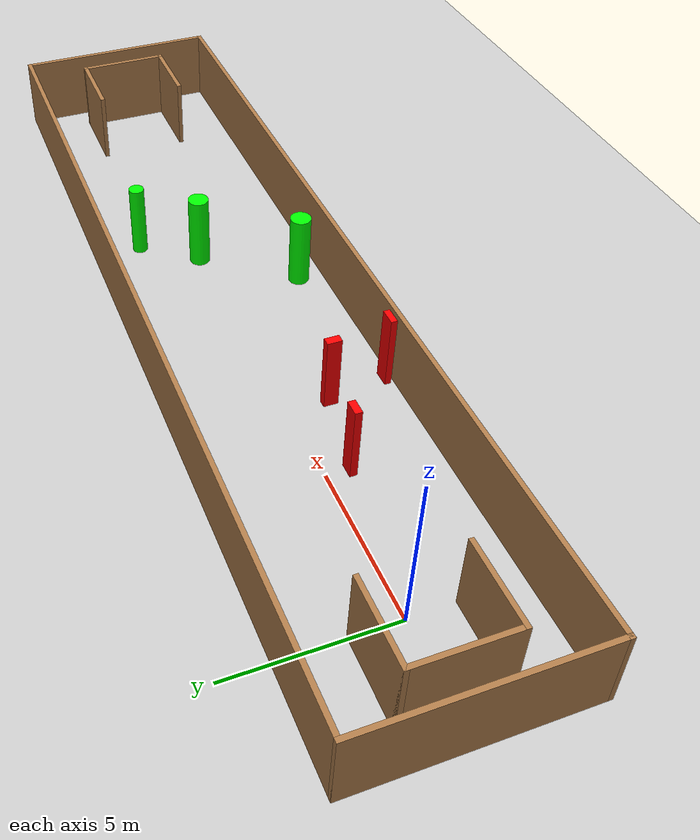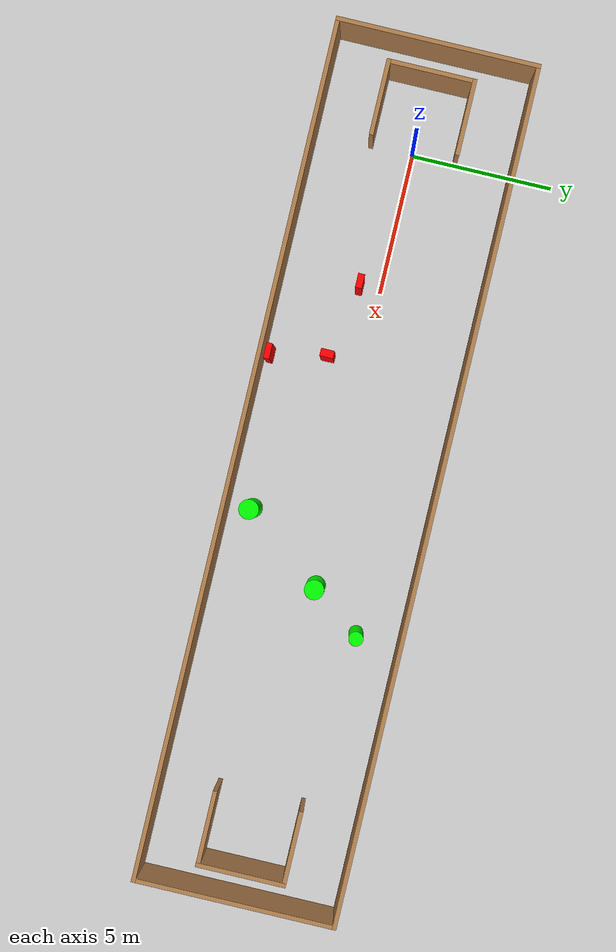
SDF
<sdf version="1.7">
 <world name="default">
  <light name="sun" type="directional">
   <pose>0 0 10 0 -0 0</pose>
   <diffuse>0.8 0.8 0.8 1</diffuse>
   <specular>0.2 0.2 0.2 1</specular>
   <attenuation>
    <range>1000</range>
    <constant>0.9</constant>
    <linear>0.01</linear>
    <quadratic>0.001</quadratic>
   </attenuation>
   <direction>-0.5 0.1 -0.9</direction>
   <spot><inner_angle>0</inner_angle><outer_angle>0</outer_angle><falloff>0</falloff></spot>
  </light>
  <model name="ground_plane">
   <static>1</static>
   <link name="link">
    <collision name="collision">
     <geometry><plane><normal>0 0 1</normal><size>100 100</size></plane></geometry>
     <surface>
      <contact><collide_bitmask>65535</collide_bitmask></contact>
      <friction><ode><mu>100</mu><mu2>50</mu2></ode></friction>
     </surface>
    </collision>
    <visual name="visual">
     <cast_shadows>0</cast_shadows>
     <geometry><plane><normal>0 0 1</normal><size>100 100</size></plane></geometry>
     <material>
      <script><uri>file://media/materials/scripts/gazebo.material</uri><name>Gazebo/Grey</name></script>
     </material>
    </visual>
   </link>
  </model>
  <gravity>0 0 -9.8</gravity>
  <magnetic_field>6e-06 2.3e-05 -4.2e-05</magnetic_field>
  <atmosphere type="adiabatic"/>
  <physics type="ode">
   <max_step_size>0.001</max_step_size>
   <real_time_factor>1</real_time_factor>
   <real_time_update_rate>1000</real_time_update_rate>
  </physics>
  <scene><ambient>0.4 0.4 0.4 1</ambient><background>0.7 0.7 0.7 1</background><shadows>1</shadows></scene>
  <spherical_coordinates>
   <surface_model>EARTH_WGS84</surface_model>
   <latitude_deg>0</latitude_deg>
   <longitude_deg>0</longitude_deg>
   <elevation>0</elevation>
   <heading_deg>0</heading_deg>
  </spherical_coordinates>
  <model name="my_base_walls">
   <link name="Wall_0">
    <collision name="Wall_0_Collision">
     <geometry><box><size>7.15 0.15 2.5</size></box></geometry>
     <pose>0 0 1.25 0 -0 0</pose>
    </collision>
    <visual name="Wall_0_Visual">
     <pose>0 0 1.25 0 -0 0</pose>
     <geometry><box><size>7.15 0.15 2.5</size></box></geometry>
     <material>
      <script><uri>file://media/materials/scripts/gazebo.material</uri><name>Gazebo/Wood</name></script>
      <ambient>1 1 1 1</ambient>
     </material>
     <meta><layer>0</layer></meta>
    </visual>
    <pose>-15 0 0 0 -0 1.5708</pose>
   </link>
   <link name="Wall_10">
    <collision name="Wall_10_Collision">
     <geometry><box><size>2.65 0.15 2.5</size></box></geometry>
     <pose>0 0 1.25 0 -0 0</pose>
    </collision>
    <visual name="Wall_10_Visual">
     <pose>0 0 1.25 0 -0 0</pose>
     <geometry><box><size>2.65 0.15 2.5</size></box></geometry>
     <material>
      <script><uri>file://media/materials/scripts/gazebo.material</uri><name>Gazebo/Wood</name></script>
      <ambient>1 1 1 1</ambient>
     </material>
     <meta><layer>0</layer></meta>
    </visual>
    <pose>-12.75 -1.5 0 0 -0 0</pose>
   </link>
   <link name="Wall_12">
    <collision name="Wall_12_Collision">
     <geometry><box><size>2.65 0.15 2.5</size></box></geometry>
     <pose>0 0 1.25 0 -0 0</pose>
    </collision>
    <visual name="Wall_12_Visual">
     <pose>0 0 1.25 0 -0 0</pose>
     <geometry><box><size>2.65 0.15 2.5</size></box></geometry>
     <material>
      <script><uri>file://media/materials/scripts/gazebo.material</uri><name>Gazebo/Wood</name></script>
      <ambient>1 1 1 1</ambient>
     </material>
     <meta><layer>0</layer></meta>
    </visual>
    <pose>-12.75 1.5 0 0 -0 0</pose>
   </link>
   <link name="Wall_14">
    <collision name="Wall_14_Collision">
     <geometry><box><size>3.15 0.15 2.5</size></box></geometry>
     <pose>0 0 1.25 0 -0 0</pose>
    </collision>
    <visual name="Wall_14_Visual">
     <pose>0 0 1.25 0 -0 0</pose>
     <geometry><box><size>3.15 0.15 2.5</size></box></geometry>
     <material>
      <script><uri>file://media/materials/scripts/gazebo.material</uri><name>Gazebo/Wood</name></script>
      <ambient>1 1 1 1</ambient>
     </material>
     <meta><layer>0</layer></meta>
    </visual>
    <pose>14 0 0 0 -0 -1.5708</pose>
   </link>
   <link name="Wall_15">
    <collision name="Wall_15_Collision">
     <geometry><box><size>2.65 0.15 2.5</size></box></geometry>
     <pose>0 0 1.25 0 -0 0</pose>
    </collision>
    <visual name="Wall_15_Visual">
     <pose>0 0 1.25 0 -0 0</pose>
     <geometry><box><size>2.65 0.15 2.5</size></box></geometry>
     <material>
      <script><uri>file://media/materials/scripts/gazebo.material</uri><name>Gazebo/Wood</name></script>
      <ambient>1 1 1 1</ambient>
     </material>
     <meta><layer>0</layer></meta>
    </visual>
    <pose>12.75 -1.5 0 0 -0 3.14159</pose>
   </link>
   <link name="Wall_17">
    <collision name="Wall_17_Collision">
     <geometry><box><size>2.65 0.15 2.5</size></box></geometry>
     <pose>0 0 1.25 0 -0 0</pose>
    </collision>
    <visual name="Wall_17_Visual">
     <pose>0 0 1.25 0 -0 0</pose>
     <geometry><box><size>2.65 0.15 2.5</size></box></geometry>
     <material>
      <script><uri>file://media/materials/scripts/gazebo.material</uri><name>Gazebo/Wood</name></script>
      <ambient>1 1 1 1</ambient>
     </material>
     <meta><layer>0</layer></meta>
    </visual>
    <pose>12.75 1.5 0 0 -0 3.14159</pose>
   </link>
   <link name="Wall_2">
    <collision name="Wall_2_Collision">
     <geometry><box><size>30.15 0.15 2.5</size></box></geometry>
     <pose>0 0 1.25 0 -0 0</pose>
    </collision>
    <visual name="Wall_2_Visual">
     <pose>0 0 1.25 0 -0 0</pose>
     <geometry><box><size>30.15 0.15 2.5</size></box></geometry>
     <material>
      <script><uri>file://media/materials/scripts/gazebo.material</uri><name>Gazebo/Wood</name></script>
      <ambient>1 1 1 1</ambient>
     </material>
     <meta><layer>0</layer></meta>
    </visual>
    <pose>-0 -3.5 0 0 -0 0</pose>
   </link>
   <link name="Wall_4">
    <collision name="Wall_4_Collision">
     <geometry><box><size>30.15 0.15 2.5</size></box></geometry>
     <pose>0 0 1.25 0 -0 0</pose>
    </collision>
    <visual name="Wall_4_Visual">
     <pose>0 0 1.25 0 -0 0</pose>
     <geometry><box><size>30.15 0.15 2.5</size></box></geometry>
     <material>
      <script><uri>file://media/materials/scripts/gazebo.material</uri><name>Gazebo/Wood</name></script>
      <ambient>1 1 1 1</ambient>
     </material>
     <meta><layer>0</layer></meta>
    </visual>
    <pose>-0 3.5 0 0 -0 0</pose>
   </link>
   <link name="Wall_6">
    <collision name="Wall_6_Collision">
     <geometry><box><size>7.15 0.15 2.5</size></box></geometry>
     <pose>0 0 1.25 0 -0 0</pose>
    </collision>
    <visual name="Wall_6_Visual">
     <pose>0 0 1.25 0 -0 0</pose>
     <geometry><box><size>7.15 0.15 2.5</size></box></geometry>
     <material>
      <script><uri>file://media/materials/scripts/gazebo.material</uri><name>Gazebo/Wood</name></script>
      <ambient>1 1 1 1</ambient>
     </material>
     <meta><layer>0</layer></meta>
    </visual>
    <pose>15 0 0 0 -0 -1.5708</pose>
   </link>
   <link name="Wall_9">
    <collision name="Wall_9_Collision">
     <geometry><box><size>3.15 0.15 2.5</size></box></geometry>
     <pose>0 0 1.25 0 -0 0</pose>
    </collision>
    <visual name="Wall_9_Visual">
     <pose>0 0 1.25 0 -0 0</pose>
     <geometry><box><size>3.15 0.15 2.5</size></box></geometry>
     <material>
      <script><uri>file://media/materials/scripts/gazebo.material</uri><name>Gazebo/Wood</name></script>
      <ambient>1 1 1 1</ambient>
     </material>
     <meta><layer>0</layer></meta>
    </visual>
    <pose>-14 0 0 0 -0 -1.5708</pose>
   </link>
   <static>1</static>
   <pose>11.5 0 0 0 -0 0</pose>
  </model>
  <model name="cylinder1">
   <static>1</static>
   <link name="link">
    <inertial>
     <mass>1</mass>
     <inertia><ixx>0.5</ixx><ixy>0</ixy><ixz>0</ixz><iyy>0.5</iyy><iyz>0</iyz><izz>1</izz></inertia>
    </inertial>
    <collision name="collision">
     <geometry><cylinder><radius>0.3457130239332029</radius><length>2.5</length></cylinder></geometry>
    </collision>
    <visual name="visual">
     <geometry><cylinder><radius>0.3457130239332029</radius><length>2.5</length></cylinder></geometry>
     <material>
      <ambient>0 1 0 1</ambient>
      <diffuse>0 1 0 1</diffuse>
      <specular>0.1 0.1 0.1 1</specular>
      <emissive>0 0 0 0</emissive>
     </material>
    </visual>
   </link>
   <pose>13.382053495578045 -2.6019863340935006 1.25 0 0 0</pose>
  </model>
  <model name="cylinder2">
   <static>1</static>
   <link name="link">
    <inertial>
     <mass>1</mass>
     <inertia><ixx>0.5</ixx><ixy>0</ixy><ixz>0</ixz><iyy>0.5</iyy><iyz>0</iyz><izz>1</izz></inertia>
    </inertial>
    <collision name="collision">
     <geometry><cylinder><radius>0.34324678089397187</radius><length>2.5</length></cylinder></geometry>
    </collision>
    <visual name="visual">
     <geometry><cylinder><radius>0.34324678089397187</radius><length>2.5</length></cylinder></geometry>
     <material>
      <ambient>0 1 0 1</ambient>
      <diffuse>0 1 0 1</diffuse>
      <specular>0.1 0.1 0.1 1</specular>
      <emissive>0 0 0 0</emissive>
     </material>
    </visual>
   </link>
   <pose>15.522606685126801 0.18781232653146995 1.25 0 0 0</pose>
  </model>
  <model name="cylinder3">
   <static>1</static>
   <link name="link">
    <inertial>
     <mass>1</mass>
     <inertia><ixx>0.5</ixx><ixy>0</ixy><ixz>0</ixz><iyy>0.5</iyy><iyz>0</iyz><izz>1</izz></inertia>
    </inertial>
    <collision name="collision">
     <geometry><cylinder><radius>0.25306731945454675</radius><length>2.5</length></cylinder></geometry>
    </collision>
    <visual name="visual">
     <geometry><cylinder><radius>0.25306731945454675</radius><length>2.5</length></cylinder></geometry>
     <material>
      <ambient>0 1 0 1</ambient>
      <diffuse>0 1 0 1</diffuse>
      <specular>0.1 0.1 0.1 1</specular>
      <emissive>0 0 0 0</emissive>
     </material>
    </visual>
   </link>
   <pose>16.812194046626857 1.9472141662782976 1.25 0 0 0</pose>
  </model>
  <model name="box1">
   <static>1</static>
   <link name="link">
    <inertial>
     <mass>1</mass>
     <inertia><ixx>0.083</ixx><ixy>0</ixy><ixz>0</ixz><iyy>0.083</iyy><iyz>0</iyz><izz>0.083</izz></inertia>
    </inertial>
    <collision name="collision">
     <geometry><box><size>0.5425044364934488 0.20589523216800268 2.5</size></box></geometry>
    </collision>
    <visual name="visual">
     <geometry><box><size>0.5425044364934488 0.20589523216800268 2.5</size></box></geometry>
     <material>
      <ambient>1 0 0 1</ambient>
      <diffuse>1 0 0 1</diffuse>
      <specular>0.1 0.1 0.1 1</specular>
      <emissive>0 0 0 0</emissive>
     </material>
    </visual>
    <sensor name="my_contact" type="contact">
     <contact><collision>box_collision</collision><topic>__default_topic__</topic></contact>
    </sensor>
   </link>
   <pose>7.999116700197035 -3.212218515050068 1.25 0 0 0</pose>
  </model>
  <model name="box2">
   <static>1</static>
   <link name="link">
    <inertial>
     <mass>1</mass>
     <inertia><ixx>0.083</ixx><ixy>0</ixy><ixz>0</ixz><iyy>0.083</iyy><iyz>0</iyz><izz>0.083</izz></inertia>
    </inertial>
    <collision name="collision">
     <geometry><box><size>0.26290988407732047 0.46750984024514763 2.5</size></box></geometry>
    </collision>
    <visual name="visual">
     <geometry><box><size>0.26290988407732047 0.46750984024514763 2.5</size></box></geometry>
     <material>
      <ambient>1 0 0 1</ambient>
      <diffuse>1 0 0 1</diffuse>
      <specular>0.1 0.1 0.1 1</specular>
      <emissive>0 0 0 0</emissive>
     </material>
    </visual>
    <sensor name="my_contact" type="contact">
     <contact><collision>box_collision</collision><topic>__default_topic__</topic></contact>
    </sensor>
   </link>
   <pose>7.623638453027681 -1.237349251354908 1.25 0 0 0</pose>
  </model>
  <model name="box3">
   <static>1</static>
   <link name="link">
    <inertial>
     <mass>1</mass>
     <inertia><ixx>0.083</ixx><ixy>0</ixy><ixz>0</ixz><iyy>0.083</iyy><iyz>0</iyz><izz>0.083</izz></inertia>
    </inertial>
    <collision name="collision">
     <geometry><box><size>0.4909774820092031 0.22988108446723288 2.5</size></box></geometry>
    </collision>
    <visual name="visual">
     <geometry><box><size>0.4909774820092031 0.22988108446723288 2.5</size></box></geometry>
     <material>
      <ambient>1 0 0 1</ambient>
      <diffuse>1 0 0 1</diffuse>
      <specular>0.1 0.1 0.1 1</specular>
      <emissive>0 0 0 0</emissive>
     </material>
    </visual>
    <sensor name="my_contact" type="contact">
     <contact><collision>box_collision</collision><topic>__default_topic__</topic></contact>
    </sensor>
   </link>
   <pose>4.974379567317696 -0.719542363134869 1.25 0 0 0</pose>
  </model>
 </world>
</sdf>
